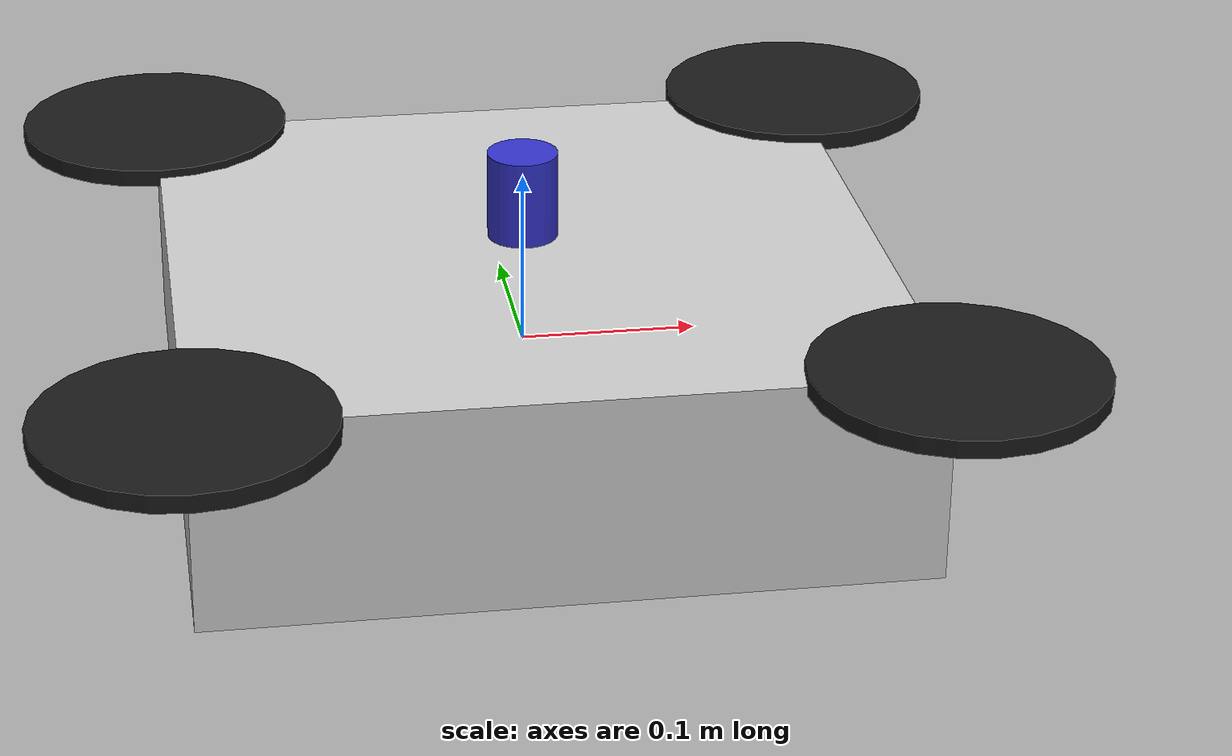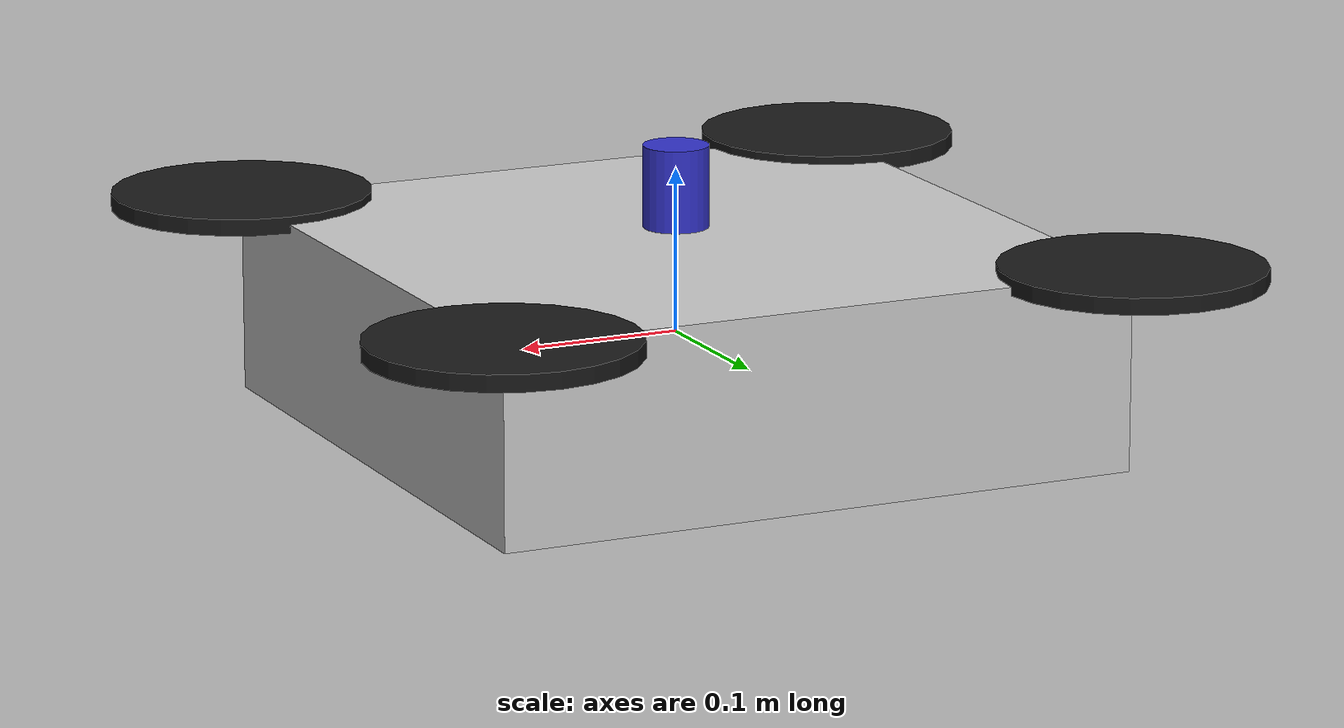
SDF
<?xml version="1.0" ?>
<sdf version="1.6">
  <model name="px4_drone">
    <static>false</static>

    <!-- Main body link -->
    <link name="base_link">
      <!-- Main body visual -->
      <visual name="body_visual">
        <geometry>
          <box>
            <size>0.4 0.4 0.12</size>
          </box>
        </geometry>
        <material>
          <ambient>0.8 0.8 0.8 1</ambient>
          <diffuse>0.8 0.8 0.8 1</diffuse>
          <specular>0.2 0.2 0.2 1</specular>
        </material>
      </visual>

      <!-- Body collision -->
      <collision name="body_collision">
        <geometry>
          <box>
            <size>0.4 0.4 0.12</size>
          </box>
        </geometry>
        <surface>
          <contact>
            <ode>
              <max_vel>0.1</max_vel>
              <min_depth>0.001</min_depth>
            </ode>
          </contact>
        </surface>
      </collision>

      <!-- Inertial properties for realistic drone physics -->
      <inertial>
        <mass>1.5</mass>
        <inertia>
          <ixx>0.015</ixx>
          <ixy>0</ixy>
          <ixz>0</ixz>
          <iyy>0.015</iyy>
          <iyz>0</iyz>
          <izz>0.025</izz>
        </inertia>
      </inertial>

      <!-- Self-collide for realistic physics -->
      <self_collide>false</self_collide>
    </link>

    <!-- Propeller 1 - Front Right -->
    <link name="propeller_1">
      <visual name="prop_1_visual">
        <geometry>
          <cylinder>
            <radius>0.08</radius>
            <length>0.01</length>
          </cylinder>
        </geometry>
        <material>
          <ambient>0.1 0.1 0.1 1</ambient>
          <diffuse>0.1 0.1 0.1 1</diffuse>
        </material>
      </visual>
      <pose>0.2 0.2 0.06 0 0 0</pose>

      <!-- Propeller collision -->
      <collision name="prop_1_collision">
        <geometry>
          <cylinder>
            <radius>0.08</radius>
            <length>0.01</length>
          </cylinder>
        </geometry>
      </collision>

      <!-- Propeller inertial -->
      <inertial>
        <mass>0.05</mass>
        <inertia>
          <ixx>0.0001</ixx>
          <ixy>0</ixy>
          <ixz>0</ixz>
          <iyy>0.0001</iyy>
          <iyz>0</iyz>
          <izz>0.0002</izz>
        </inertia>
      </inertial>
    </link>

    <!-- Propeller 2 - Front Left -->
    <link name="propeller_2">
      <visual name="prop_2_visual">
        <geometry>
          <cylinder>
            <radius>0.08</radius>
            <length>0.01</length>
          </cylinder>
        </geometry>
        <material>
          <ambient>0.1 0.1 0.1 1</ambient>
          <diffuse>0.1 0.1 0.1 1</diffuse>
        </material>
      </visual>
      <pose>-0.2 0.2 0.06 0 0 0</pose>

      <collision name="prop_2_collision">
        <geometry>
          <cylinder>
            <radius>0.08</radius>
            <length>0.01</length>
          </cylinder>
        </geometry>
      </collision>

      <inertial>
        <mass>0.05</mass>
        <inertia>
          <ixx>0.0001</ixx>
          <ixy>0</ixy>
          <ixz>0</ixz>
          <iyy>0.0001</iyy>
          <iyz>0</iyz>
          <izz>0.0002</izz>
        </inertia>
      </inertial>
    </link>

    <!-- Propeller 3 - Back Right -->
    <link name="propeller_3">
      <visual name="prop_3_visual">
        <geometry>
          <cylinder>
            <radius>0.08</radius>
            <length>0.01</length>
          </cylinder>
        </geometry>
        <material>
          <ambient>0.1 0.1 0.1 1</ambient>
          <diffuse>0.1 0.1 0.1 1</diffuse>
        </material>
      </visual>
      <pose>0.2 -0.2 0.06 0 0 0</pose>

      <collision name="prop_3_collision">
        <geometry>
          <cylinder>
            <radius>0.08</radius>
            <length>0.01</length>
          </cylinder>
        </geometry>
      </collision>

      <inertial>
        <mass>0.05</mass>
        <inertia>
          <ixx>0.0001</ixx>
          <ixy>0</ixy>
          <ixz>0</ixz>
          <iyy>0.0001</iyy>
          <iyz>0</iyz>
          <izz>0.0002</izz>
        </inertia>
      </inertial>
    </link>

    <!-- Propeller 4 - Back Left -->
    <link name="propeller_4">
      <visual name="prop_4_visual">
        <geometry>
          <cylinder>
            <radius>0.08</radius>
            <length>0.01</length>
          </cylinder>
        </geometry>
        <material>
          <ambient>0.1 0.1 0.1 1</ambient>
          <diffuse>0.1 0.1 0.1 1</diffuse>
        </material>
      </visual>
      <pose>-0.2 -0.2 0.06 0 0 0</pose>

      <collision name="prop_4_collision">
        <geometry>
          <cylinder>
            <radius>0.08</radius>
            <length>0.01</length>
          </cylinder>
        </geometry>
      </collision>

      <inertial>
        <mass>0.05</mass>
        <inertia>
          <ixx>0.0001</ixx>
          <ixy>0</ixy>
          <ixz>0</ixz>
          <iyy>0.0001</iyy>
          <iyz>0</iyz>
          <izz>0.0002</izz>
        </inertia>
      </inertial>
    </link>

    <!-- GPS antenna -->
    <link name="gps_antenna">
      <visual name="gps_visual">
        <geometry>
          <cylinder>
            <radius>0.02</radius>
            <length>0.05</length>
          </cylinder>
        </geometry>
        <material>
          <ambient>0.2 0.2 0.8 1</ambient>
          <diffuse>0.2 0.2 0.8 1</diffuse>
        </material>
      </visual>
      <pose>0 0 0.09 0 0 0</pose>
    </link>

    <!-- Joints for propellers (fixed for now, can be made dynamic later) -->
    <joint name="prop1_joint" type="fixed">
      <parent>base_link</parent>
      <child>propeller_1</child>
    </joint>

    <joint name="prop2_joint" type="fixed">
      <parent>base_link</parent>
      <child>propeller_2</child>
    </joint>

    <joint name="prop3_joint" type="fixed">
      <parent>base_link</parent>
      <child>propeller_3</child>
    </joint>

    <joint name="prop4_joint" type="fixed">
      <parent>base_link</parent>
      <child>propeller_4</child>
    </joint>

    <joint name="gps_joint" type="fixed">
      <parent>base_link</parent>
      <child>gps_antenna</child>
    </joint>

    <!-- Plugin for PX4 integration -->
    <plugin name="px4_plugin" filename="libgazebo_ros_planar_move.so">
      <commandTopic>/cmd_vel</commandTopic>
      <odometryTopic>/odom</odometryTopic>
      <odometryFrame>odom</odometryFrame>
      <odometryRate>20.0</odometryRate>
      <robotBaseFrame>base_link</robotBaseFrame>
    </plugin>
  </model>
</sdf>
